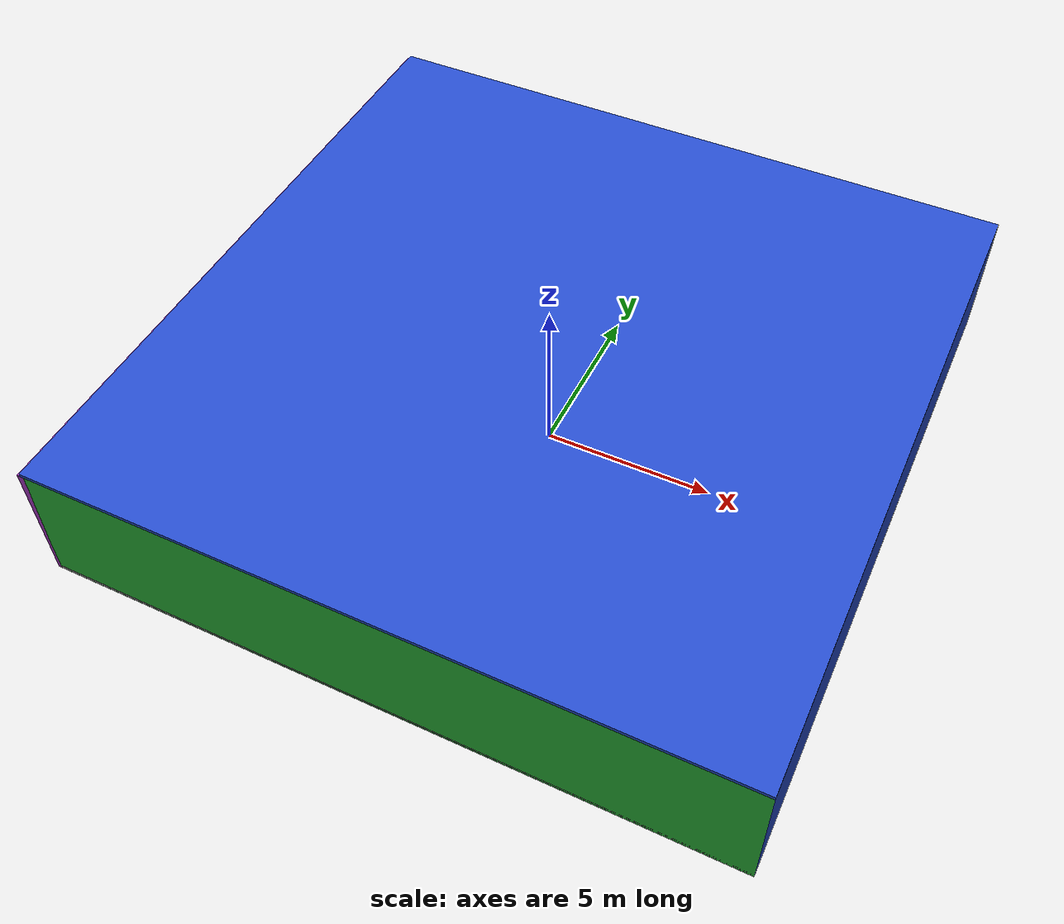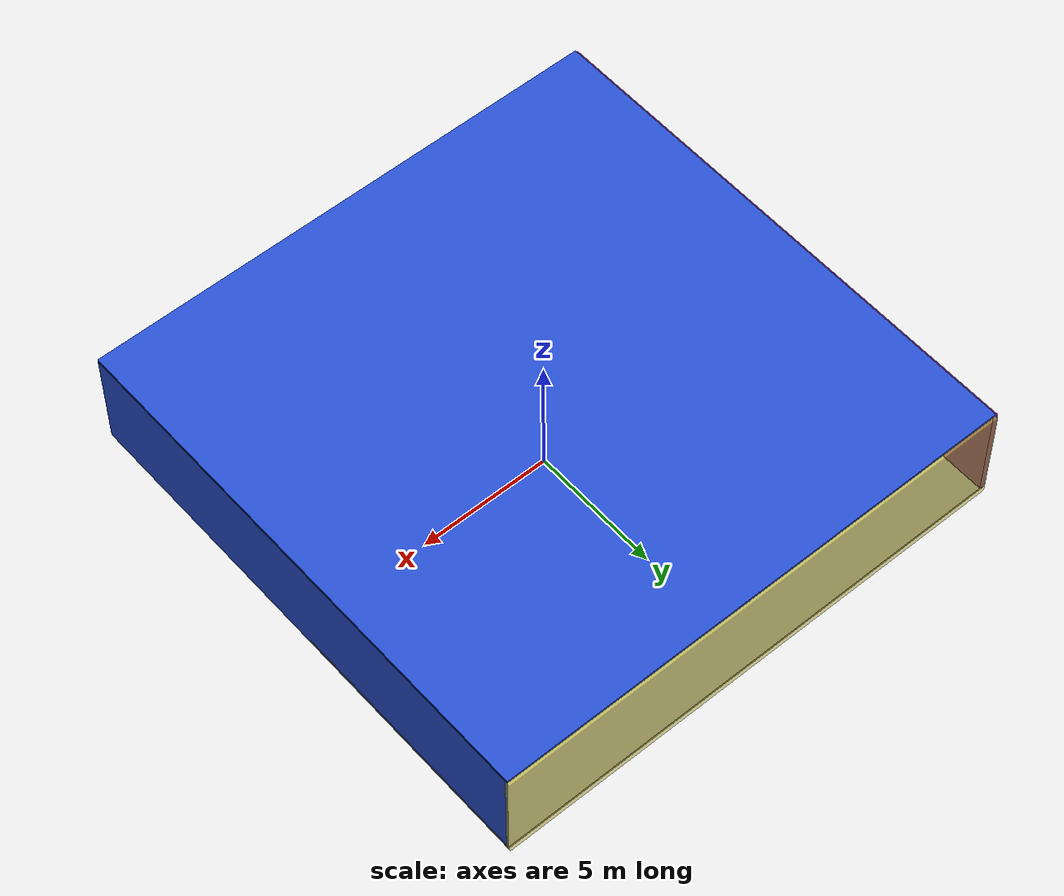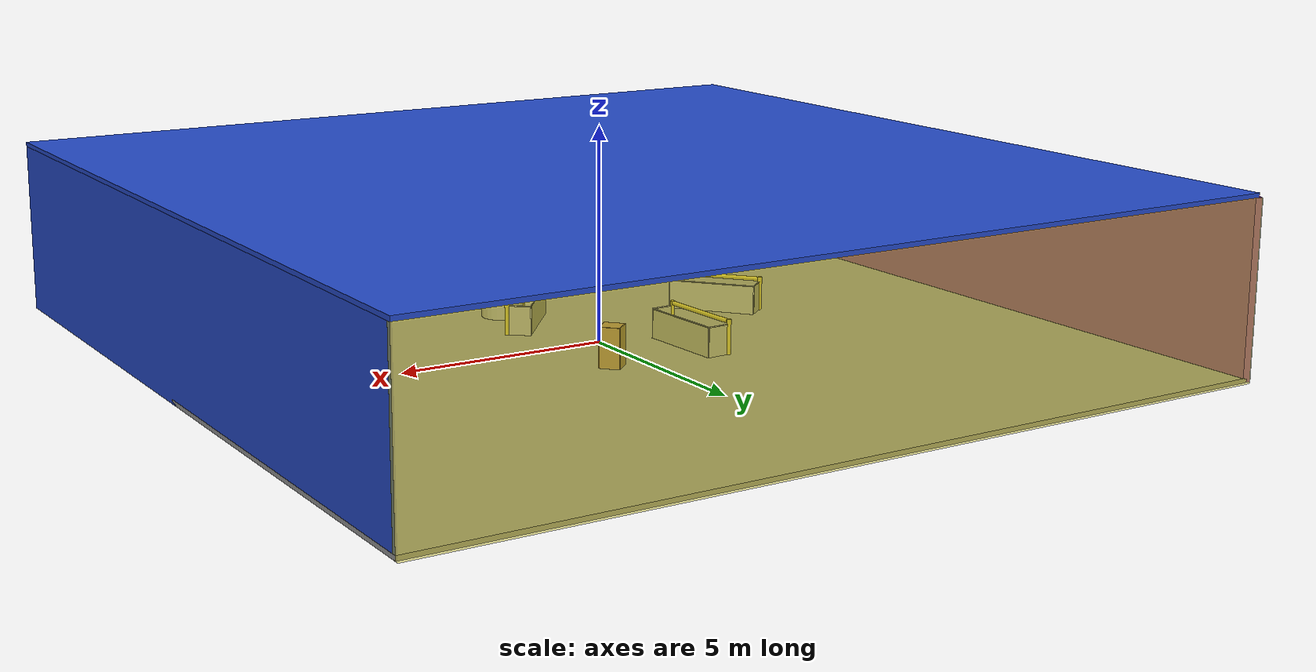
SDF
<sdf version="1.4">
 <world name="default">
  <physics type="ode">
   <max_step_size>0.001</max_step_size>
   <real_time_factor>1</real_time_factor>
   <real_time_update_rate>1000</real_time_update_rate>
   <gravity>0 0 -9.8</gravity>
  </physics>
  <scene><ambient>0.4 0.4 0.4 1</ambient><background>0.7 0.7 0.7 1</background><shadows>1</shadows></scene>
  <model name="Surrounding">
   <static>1</static>
   <link name="Ceiling">
    <collision name="Ceiling_Collision"><geometry><box><size>20 20 0.1</size></box></geometry></collision>
    <visual name="Ceiling_Visual">
     <geometry><box><size>20 20 0.1</size></box></geometry>
     <material>
      <script><uri>file://media/materials/scripts/gazebo.material</uri><name>Gazebo/Blue</name></script>
     </material>
    </visual>
    <pose>0 0 4.05 0 0 0</pose>
   </link>
   <link name="Wall_South">
    <collision name="Wall_South_Collision">
     <geometry><box><size>20 0 4</size></box></geometry>
     <pose>0 0 2 0 -0 0</pose>
    </collision>
    <visual name="Wall_South_Visual">
     <pose>0 0 2 0 -0 0</pose>
     <geometry><box><size>20 0 4</size></box></geometry>
     <material>
      <script><uri>file://media/materials/scripts/gazebo.material</uri><name>Gazebo/Green</name></script>
     </material>
    </visual>
    <velocity_decay><linear>0</linear><angular>0</angular></velocity_decay>
    <pose>0 -10 0 0 -0 0</pose>
   </link>
   <link name="Wall_East">
    <collision name="Wall_21_Collision">
     <geometry><box><size>20 0 4</size></box></geometry>
     <pose>0 0 2 0 -0 0</pose>
    </collision>
    <visual name="Wall_21_Visual">
     <pose>0 0 2 0 -0 0</pose>
     <geometry><box><size>20 0 4</size></box></geometry>
     <material>
      <script><uri>file://media/materials/scripts/gazebo.material</uri><name>Gazebo/Blue</name></script>
     </material>
    </visual>
    <velocity_decay><linear>0</linear><angular>0</angular></velocity_decay>
    <pose>10 0 0 0 -0 1.5708</pose>
   </link>
   <link name="Wall_North">
    <collision name="Wall_22_Collision">
     <geometry><box><size>20 0.2 4</size></box></geometry>
     <pose>0 0 2 0 -0 0</pose>
    </collision>
    <visual name="Wall_22_Visual">
     <pose>0 0 2 0 -0 0</pose>
     <geometry><box><size>20 0.2 4</size></box></geometry>
     <material>
      <script>
       <uri>file://media/materials/scripts/gazebo.material</uri>
       <name>Gazebo/YellowTransparent</name>
      </script>
     </material>
    </visual>
    <velocity_decay><linear>0</linear><angular>0</angular></velocity_decay>
    <pose>0 10 0 0 -0 0</pose>
   </link>
   <link name="Wall_West">
    <collision name="Wall_23_Collision">
     <geometry><box><size>20 0.2 4</size></box></geometry>
     <pose>0 0 2 0 -0 0</pose>
    </collision>
    <visual name="Wall_23_Visual">
     <pose>0 0 2 0 -0 0</pose>
     <geometry><box><size>20 0.2 4</size></box></geometry>
     <material>
      <script><uri>file://media/materials/scripts/gazebo.material</uri><name>Gazebo/PurpleGlow</name></script>
     </material>
    </visual>
    <velocity_decay><linear>0</linear><angular>0</angular></velocity_decay>
    <pose>-10 0 0 0 0 -1.5708</pose>
   </link>
   <link name="Ground_link">
    <collision name="collision">
     <pose>0 0 .05 0 -0 0</pose>
     <geometry><box><size>20 20 0.1</size></box></geometry>
    </collision>
    <visual name="visual">
     <pose>0 0 .05 0 -0 0</pose>
     <geometry><box><size>20 20 0.1</size></box></geometry>
     <material>
      <script><uri>file://media/materials/scripts/gazebo.material</uri><name>Gazebo/Grey</name></script>
     </material>
    </visual>
   </link>
   <static>1</static>
  </model>
  <spherical_coordinates>
   <surface_model>EARTH_WGS84</surface_model>
   <latitude_deg>0</latitude_deg>
   <longitude_deg>0</longitude_deg>
   <elevation>0</elevation>
   <heading_deg>0</heading_deg>
  </spherical_coordinates>
  <light name="lightball_0" type="diffuse">
   <diffuse>0.8 0.8 0.8 1</diffuse>
   <specular>0.2 0.2 0.2 1</specular>
   <attenuation>
    <range>100</range>
    <constant>0.7</constant>
    <linear>0.01</linear>
    <quadratic>0.001</quadratic>
   </attenuation>
   <direction>-0.5 0.1 -0.9</direction>
   <pose>-5.6814107979 -3.33226292092 3.87213154926 0 0 0</pose>
  </light>
  <light name="lightball_1" type="diffuse">
   <diffuse>0.8 0.8 0.8 1</diffuse>
   <specular>0.2 0.2 0.2 1</specular>
   <attenuation>
    <range>100</range>
    <constant>0.7</constant>
    <linear>0.01</linear>
    <quadratic>0.001</quadratic>
   </attenuation>
   <direction>-0.5 0.1 -0.9</direction>
   <pose>-8.20204461137 4.6154745482 1.07607513441 0 0 0</pose>
  </light>
  <light name="lightball_2" type="diffuse">
   <diffuse>0.8 0.8 0.8 1</diffuse>
   <specular>0.2 0.2 0.2 1</specular>
   <attenuation>
    <range>100</range>
    <constant>0.7</constant>
    <linear>0.01</linear>
    <quadratic>0.001</quadratic>
   </attenuation>
   <direction>-0.5 0.1 -0.9</direction>
   <pose>8.88289423339 -7.94732310627 3.47126274533 0 0 0</pose>
  </light>
  <light name="lightball_3" type="diffuse">
   <diffuse>0.8 0.8 0.8 1</diffuse>
   <specular>0.2 0.2 0.2 1</specular>
   <attenuation>
    <range>100</range>
    <constant>0.7</constant>
    <linear>0.01</linear>
    <quadratic>0.001</quadratic>
   </attenuation>
   <direction>-0.5 0.1 -0.9</direction>
   <pose>0.855140819759 1.09835459646 0.853019550653 0 0 0</pose>
  </light>
  <include>
   <uri>model://robocup_3Dsim_goal</uri>
   <pose>-4.07818405708 -1.14614775908 0 0 0 0.687375549095</pose>
  </include>
  <include>
   <uri>model://robocup_3Dsim_goal</uri>
   <pose>-1.67741270705 1.61954429619 0 0 0 0.049121390189</pose>
  </include>
  <include>
   <uri>model://textured_shapes</uri>
   <pose>1.28122081702 -4.50590216433 0 0 0 0.30212182762</pose>
  </include>
  <include>
   <uri>model://robocup_3Dsim_goal</uri>
   <pose>0.974240990707 -2.20023783107 0 0 0 2.46116339498</pose>
  </include>
  <include><uri>model://cabinet</uri><pose>0.99239984007 2.15867209641 0 0 0 0.740065651386</pose></include>
 </world>
</sdf>

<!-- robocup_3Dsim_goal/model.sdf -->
<sdf version="1.5">
  <model name="robocup_3d_goal">
    <static>true</static>
    <link name="left_post">
      <pose>0 1.05 0.45 0 0 0</pose>
      <collision name="collision">
        <geometry>
          <cylinder>
            <radius>0.05</radius>
            <length>0.9</length>
          </cylinder>
        </geometry>
      </collision>
      <visual name="visual">
        <geometry>
          <cylinder>
            <radius>0.05</radius>
            <length>0.9</length>
          </cylinder>
        </geometry>
        <material>
          <script>
            <uri>file://media/materials/scripts/gazebo.material</uri>
            <name>Gazebo/ZincYellow</name>
          </script>
        </material>
      </visual>
    </link>
    <link name="left_support_horiz_lower">
      <pose>0.30 1.05 0.01 0 0 0</pose>
      <collision name="collision">
        <geometry>
          <box>
            <size>0.50 0.02 0.02</size>
          </box>
        </geometry>
      </collision>
      <visual name="visual">
        <geometry>
          <box>
            <size>0.50 0.02 0.02</size>
          </box>
        </geometry>
        <material>
          <script>
            <uri>file://media/materials/scripts/gazebo.material</uri>
            <name>Gazebo/White</name>
          </script>
        </material>
      </visual>
    </link>
    <link name="left_support_horiz_upper">
      <pose>0.30 1.05 0.79 0 0 0</pose>
      <collision name="collision">
        <geometry>
          <box>
            <size>0.50 0.02 0.02</size>
          </box>
        </geometry>
      </collision>
      <visual name="visual">
        <geometry>
          <box>
            <size>0.50 0.02 0.02</size>
          </box>
        </geometry>
        <material>
          <script>
            <uri>file://media/materials/scripts/gazebo.material</uri>
            <name>Gazebo/White</name>
          </script>
        </material>
      </visual>
    </link>
    <link name="left_support_vertical">
      <pose>0.56 1.05 0.4 0 1.5708 0</pose>
      <collision name="collision">
        <geometry>
          <box>
            <size>0.80 0.02 0.02</size>
          </box>
        </geometry>
      </collision>
      <visual name="visual">
        <geometry>
          <box>
            <size>0.80 0.02 0.02</size>
          </box>
        </geometry>
        <material>
          <script>
            <uri>file://media/materials/scripts/gazebo.material</uri>
            <name>Gazebo/White</name>
          </script>
        </material>
      </visual>
    </link>
    <link name="right_support_horiz_lower">
      <pose>0.30 -1.05 0.01 0 0 0</pose>
      <collision name="collision">
        <geometry>
          <box>
            <size>0.50 0.02 0.02</size>
          </box>
        </geometry>
      </collision>
      <visual name="visual">
        <geometry>
          <box>
            <size>0.50 0.02 0.02</size>
          </box>
        </geometry>
        <material>
          <script>
            <uri>file://media/materials/scripts/gazebo.material</uri>
            <name>Gazebo/White</name>
          </script>
        </material>
      </visual>
    </link>
    <link name="right_support_horiz_upper">
      <pose>0.30 -1.05 0.79 0 0 0</pose>
      <collision name="collision">
        <geometry>
          <box>
            <size>0.50 0.02 0.02</size>
          </box>
        </geometry>
      </collision>
      <visual name="visual">
        <geometry>
          <box>
            <size>0.50 0.02 0.02</size>
          </box>
        </geometry>
        <material>
          <script>
            <uri>file://media/materials/scripts/gazebo.material</uri>
            <name>Gazebo/White</name>
          </script>
        </material>
      </visual>
    </link>
    <link name="right_support_vertical">
      <pose>0.56 -1.05 0.4 0 1.5708 0</pose>
      <collision name="collision">
        <geometry>
          <box>
            <size>0.80 0.02 0.02</size>
          </box>
        </geometry>
      </collision>
      <visual name="visual">
        <geometry>
          <box>
            <size>0.80 0.02 0.02</size>
          </box>
        </geometry>
        <material>
          <script>
            <uri>file://media/materials/scripts/gazebo.material</uri>
            <name>Gazebo/White</name>
          </script>
        </material>
      </visual>
    </link>
    <link name="center_support_horiz_lower">
      <pose>0.56 0 0.01 0 1.5708 0</pose>
      <collision name="collision">
        <geometry>
          <box>
            <size>0.02 2.08 0.02</size>
          </box>
        </geometry>
      </collision>
      <visual name="visual">
        <geometry>
          <box>
            <size>0.02 2.08 0.02</size>
          </box>
        </geometry>
        <material>
          <script>
            <uri>file://media/materials/scripts/gazebo.material</uri>
            <name>Gazebo/White</name>
          </script>
        </material>
      </visual>
    </link>
    <link name="center_support_horiz_upper">
      <pose>0.56 0 0.79 0 1.5708 0</pose>
      <collision name="collision">
        <geometry>
          <box>
            <size>0.02 2.08 0.02</size>
          </box>
        </geometry>
      </collision>
      <visual name="visual">
        <geometry>
          <box>
            <size>0.02 2.08 0.02</size>
          </box>
        </geometry>
        <material>
          <script>
            <uri>file://media/materials/scripts/gazebo.material</uri>
            <name>Gazebo/White</name>
          </script>
        </material>
      </visual>
    </link>
    <link name="right_post">
      <pose>0 -1.05 0.45 0 0 0</pose>
      <collision name="collision">
        <geometry>
          <cylinder>
            <radius>0.05</radius>
            <length>0.9</length>
          </cylinder>
        </geometry>
      </collision>
      <visual name="visual">
        <geometry>
          <cylinder>
            <radius>0.05</radius>
            <length>0.9</length>
          </cylinder>
        </geometry>
        <material>
          <script>
            <uri>file://media/materials/scripts/gazebo.material</uri>
            <name>Gazebo/ZincYellow</name>
          </script>
        </material>
      </visual>
    </link>
    <link name="crossbar">
      <pose>0 0 0.85 1.57 1.57 0</pose>
      <collision name="collision">
        <geometry>
          <cylinder>
            <radius>0.05</radius>
            <length>2.0</length>
          </cylinder>
        </geometry>
      </collision>
      <visual name="visual">
        <geometry>
          <cylinder>
            <radius>0.05</radius>
            <length>2.0</length>
          </cylinder>
        </geometry>
        <material>
          <script>
            <uri>file://media/materials/scripts/gazebo.material</uri>
            <name>Gazebo/ZincYellow</name>
          </script>
        </material>
      </visual>
    </link>
    <link name="center_net">
      <pose>0.56 0 0.40 0 0 0</pose>
      <collision name="collision">
        <geometry>
          <box>
            <size>0.01 2.1 0.80</size>
          </box>
        </geometry>
      </collision>
      <visual name="visual">
        <geometry>
          <box>
            <size>0.01 2.1 0.80</size>
          </box>
        </geometry>
        <material>
          <script>
            <uri>model://../model_source/models/robocup09_spl_field/materials/scripts/</uri>
            <uri>model://../model_source/models/robocup09_spl_field/materials/textures/</uri>
            <name>RoboCup/Net</name>
          </script>
        </material>
      </visual>
    </link>
    <link name="left_net">
      <pose>0.30 1.05 0.40 0 0 0</pose>
      <collision name="collision">
        <geometry>
          <box>
            <size>0.50 0.01 0.76</size>
          </box>
        </geometry>
      </collision>
      <visual name="visual">
        <geometry>
          <box>
            <size>0.50 0.01 0.76</size>
          </box>
        </geometry>
        <material>
          <script>
            <uri>model://../model_source/models/robocup09_spl_field/materials/scripts/</uri>
            <uri>model://../model_source/models/robocup09_spl_field/materials/textures/</uri>
            <name>RoboCup/Net</name>
          </script>
        </material>
      </visual>
    </link>
    <link name="right_net">
      <pose>0.30 -1.05 0.40 0 0 0</pose>
      <collision name="collision">
        <geometry>
          <box>
            <size>0.50 0.01 0.76</size>
          </box>
        </geometry>
      </collision>
      <visual name="visual">
        <geometry>
          <box>
            <size>0.50 0.01 0.76</size>
          </box>
        </geometry>
        <material>
          <script>
            <uri>model://../model_source/models/robocup09_spl_field/materials/scripts/</uri>
            <uri>model://../model_source/models/robocup09_spl_field/materials/textures/</uri>
            <name>RoboCup/Net</name>
          </script>
        </material>
      </visual>
    </link>
  </model>
</sdf>

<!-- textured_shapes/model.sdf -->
<sdf version="1.6">
  <model name="textured_shapes">
    <pose>0 0 0.5 0 0 0</pose>
    <link name="box">
      <pose>0 -1.5 0 0 0 0</pose>
      <collision name="collision">
        <geometry>
          <box>
            <size>1 1 1</size>
          </box>
        </geometry>
      </collision>
      <visual name="visual">
        <geometry>
          <box>
            <size>1 1 1</size>
          </box>
        </geometry>
        <material>
          <script>
            <uri>model://../model_source/models/textured_shapes/materials/scripts</uri>
            <uri>model://../model_source/models/textured_shapes/materials/textures</uri>
            <name>TexturedShape/Squares</name>
          </script>
        </material>
      </visual>
    </link>
    <link name="sphere">
      <collision name="collision">
        <geometry>
          <sphere>
            <radius>0.5</radius>
          </sphere>
        </geometry>
      </collision>
      <visual name="visual">
        <geometry>
          <sphere>
            <radius>0.5</radius>
          </sphere>
        </geometry>
        <material>
          <script>
            <uri>model://../model_source/models/textured_shapes/materials/scripts</uri>
            <uri>model://../model_source/models/textured_shapes/materials/textures</uri>
            <name>TexturedShape/Squares</name>
          </script>
        </material>
      </visual>
    </link>
    <link name="cylinder">
      <pose>0 1.5 0 0 0 0</pose>
      <collision name="collision">
        <geometry>
          <cylinder>
            <radius>0.5</radius>
            <length>1</length>
          </cylinder>
        </geometry>
      </collision>
      <visual name="visual">
        <geometry>
          <cylinder>
            <radius>0.5</radius>
            <length>1</length>
          </cylinder>
        </geometry>
        <material>
          <script>
            <uri>model://../model_source/models/textured_shapes/materials/scripts</uri>
            <uri>model://../model_source/models/textured_shapes/materials/textures</uri>
            <name>TexturedShape/Squares</name>
          </script>
        </material>
      </visual>
    </link>
  </model>
</sdf>

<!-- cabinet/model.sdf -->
<sdf version="1.5">
  <model name="cabinet">
    <static>true</static>
    <link name="cabinet_bottom_plate">
      <inertial>
        <pose>0 0 -1 0 0 0</pose>
        <inertia>
          <ixx>2.050000</ixx>
          <ixy>0</ixy>
          <ixz>0</ixz>
          <iyy>2.050000</iyy>
          <iyz>0</iyz>
          <izz>2.050000</izz>
        </inertia>
        <mass>25.000000</mass>
      </inertial>
      <collision name="cabinet_bottom_plate_geom">
        <pose>0 0 0.010000 0 0 0</pose>
        <geometry>
          <box>
            <size>0.450000 0.450000 0.020000</size>
          </box>
        </geometry>
      </collision>
      <visual name="cabinet_bottom_plate_geom_visual">
        <pose>0 0 0.010000 0 0 0</pose>
        <geometry>
          <box>
            <size>0.450000 0.450000 0.020000</size>
          </box>
        </geometry>
        <material>
          <script>
            <uri>model://media/materials/scripts/gazebo.material</uri>
            <name>Gazebo/Wood</name>
          </script>
        </material>
      </visual>
      <collision name="cabinet_bottom_plate_geom_cabinet_back_plate">
        <pose>0.235000 0 0.510000 0 0 0</pose>
        <geometry>
          <box>
            <size>0.020000 0.450000 1.020000</size>
          </box>
        </geometry>
      </collision>
      <visual name="cabinet_bottom_plate_geom_cabinet_back_plate_visual">
        <pose>0.235000 0 0.510000 0 0 0</pose>
        <geometry>
          <box>
            <size>0.020000 0.450000 1.020000</size>
          </box>
        </geometry>
        <material>
          <script>
            <uri>model://media/materials/scripts/gazebo.material</uri>
            <name>Gazebo/Wood</name>
          </script>
        </material>
      </visual>
      <collision name="cabinet_bottom_plate_geom_cabinet_left_plate">
        <pose>0 0.235000 0.510000 0 0 0</pose>
        <geometry>
          <box>
            <size>0.450000 0.020000 1.020000</size>
          </box>
        </geometry>
      </collision>
      <visual name="cabinet_bottom_plate_geom_cabinet_left_plate_visual">
        <pose>0 0.235000 0.510000 0 0 0</pose>
        <geometry>
          <box>
            <size>0.450000 0.020000 1.020000</size>
          </box>
        </geometry>
        <material>
          <script>
            <uri>model://media/materials/scripts/gazebo.material</uri>
            <name>Gazebo/Wood</name>
          </script>
        </material>
      </visual>
      <collision name="cabinet_bottom_plate_geom_cabinet_middle_plate">
        <pose>0 0 0.510000 0 0 0</pose>
        <geometry>
          <box>
            <size>0.450000 0.450000 0.020000</size>
          </box>
        </geometry>
      </collision>
      <visual name="cabinet_bottom_plate_geom_cabinet_middle_plate_visual">
        <pose>0 0 0.510000 0 0 0</pose>
        <geometry>
          <box>
            <size>0.450000 0.450000 0.020000</size>
          </box>
        </geometry>
        <material>
          <script>
            <uri>model://media/materials/scripts/gazebo.material</uri>
            <name>Gazebo/Wood</name>
          </script>
        </material>
      </visual>
      <collision name="cabinet_bottom_plate_geom_cabinet_right_plate">
        <pose>0 -0.235000 0.510000 0 0 0</pose>
        <geometry>
          <box>
            <size>0.450000 0.020000 1.020000</size>
          </box>
        </geometry>
      </collision>
      <visual name="cabinet_bottom_plate_geom_cabinet_right_plate_visual">
        <pose>0 -0.235000 0.510000 0 0 0</pose>
        <geometry>
          <box>
            <size>0.450000 0.020000 1.020000</size>
          </box>
        </geometry>
        <material>
          <script>
            <uri>model://media/materials/scripts/gazebo.material</uri>
            <name>Gazebo/Wood</name>
          </script>
        </material>
      </visual>
      <collision name="cabinet_bottom_plate_geom_cabinet_top_plate">
        <pose>0 0 1.010000 0 0 0</pose>
        <geometry>
          <box>
            <size>0.450000 0.450000 0.020000</size>
          </box>
        </geometry>
      </collision>
      <visual name="cabinet_bottom_plate_geom_cabinet_top_plate_visual">
        <pose>0 0 1.010000 0 0 0</pose>
        <geometry>
          <box>
            <size>0.450000 0.450000 0.020000</size>
          </box>
        </geometry>
        <material>
          <script>
            <uri>model://media/materials/scripts/gazebo.material</uri>
            <name>Gazebo/Wood</name>
          </script>
        </material>
      </visual>
    </link>
  </model>
</sdf>
